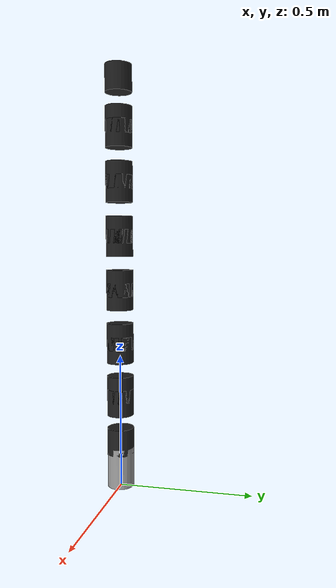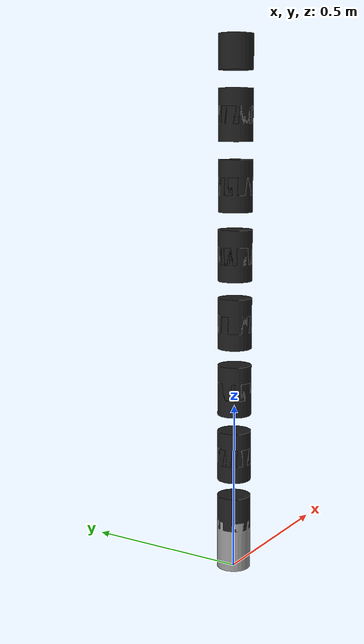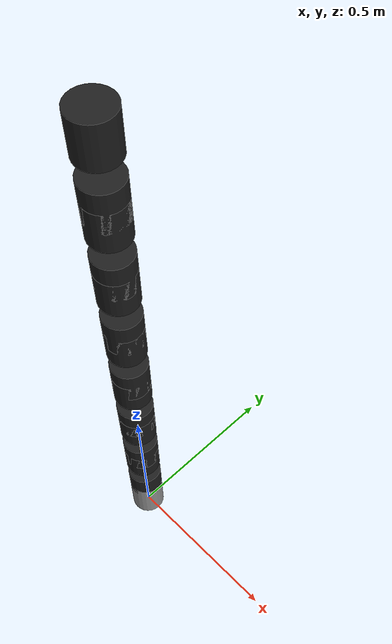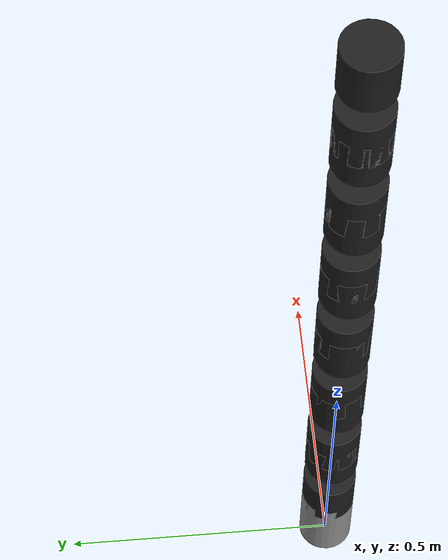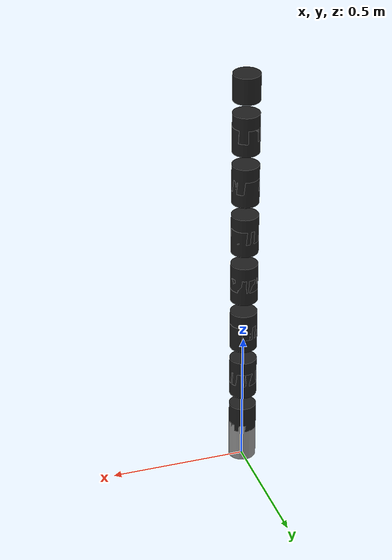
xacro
<?xml version="1.0"?>
<robot xmlns:xacro="http://www.ros.org/wiki/xacro" name="werm">
	<gazebo>
		<plugin name="gazebo_ros_control" filename="libgazebo_ros_control.so">
			<robotNamespace>/werm</robotNamespace>
		</plugin>
	</gazebo>

	<xacro:macro name="body_link" params="base_name parent_name colour">
		<link name="${base_name}_aux">
			<inertial>
				<origin xyz="0 0 0.025" rpy="0 0 0"/>
				<mass value="0.1"/>
				<inertia ixx="0.00025" ixy="0.0" iyy="0.00025" izz="0.000125"/>
			</inertial>
			<collision>
				<origin xyz="0 0 0.025" rpy="0 0 0"/>
				<geometry>
					<cylinder radius="0.05" length="0.10"/>
				</geometry>
			</collision>
			<visual>
				<origin xyz="0 0 0.025" rpy="0 0 0"/>
				<geometry>
					<cylinder radius="0.05" length="0.10"/>
				</geometry>
			</visual>
		</link>

		<gazebo reference="${base_name}_aux">
			<kp>1000000000.0</kp>
			<kd>1000000000.0</kd>
			<mu1>10.0</mu1>
			<mu2>10.0</mu2>
			<material>Gazebo/Black</material>
			<self_collide>1</self_collide>
		</gazebo>

		<link name="${base_name}">
			<inertial>
				<origin xyz="0 0 0.125" rpy="0 0 0"/>
				<mass value="0.1"/>
				<inertia ixx="0.00025" ixy="0.0" iyy="0.00025" izz="0.000125"/>
			</inertial>
			<collision>
				<origin xyz="0 0 0.125" rpy="0 0 0"/>
				<geometry>
					<cylinder radius="0.05" length="0.10"/>
				</geometry>
			</collision>
			<visual>
				<origin xyz="0 0 0.125" rpy="0 0 0"/>
				<geometry>
					<cylinder radius="0.05" length="0.10"/>
				</geometry>
			</visual>
		</link>

		<gazebo reference="${base_name}">
			<kp>1000000000.0</kp>
			<kd>1000000000.0</kd>
			<mu1>10.0</mu1>
			<mu2>10.0</mu2>
			<material>Gazebo/Black</material>
			<self_collide>1</self_collide>
		</gazebo>

        <joint name="${base_name}_aux_joint" type="revolute">
            <parent link="${parent_name}"/>
        	<child link="${base_name}_aux"/>
            <origin xyz="0 0 0.15" rpy="0 0 0"/>
            <limit lower="-1.5708" upper="1.5708" effort="100.0" velocity="0.5"/>
            <axis xyz="1 0 0"/>
    	</joint>

        <joint name="${base_name}_joint" type="revolute">
    	    <parent link="${base_name}_aux"/>
        	<child link="${base_name}"/>
            <origin xyz="0 0 0.05" rpy="0 0 0"/>
            <limit lower="-1.5708" upper="1.5708" effort="100.0" velocity="0.5"/>
            <axis xyz="0 1 0"/>
    	</joint>

	    <transmission name="tran${base_name}_aux">
            <type>transmission_interface/SimpleTransmission</type>
            <joint name="${base_name}_aux_joint">
                <hardwareInterface>EffortJointInterface</hardwareInterface>
            </joint>
            <actuator name="motor${base_name}_aux">
                <hardwareInterface>EffortJointInterface</hardwareInterface>
                <mechanicalReduction>1</mechanicalReduction>
            </actuator>
        </transmission>

        <transmission name="tran${base_name}">
            <type>transmission_interface/SimpleTransmission</type>
            <joint name="${base_name}_joint">
                <hardwareInterface>EffortJointInterface</hardwareInterface>
            </joint>
            <actuator name="motor${base_name}">
                <hardwareInterface>EffortJointInterface</hardwareInterface>
                <mechanicalReduction>1</mechanicalReduction>
            </actuator>
        </transmission>
	</xacro:macro>

    <link name="base_link">
 	    <inertial>
            <origin xyz="0 0 0.075" rpy="0 0 0"/>
            <mass value="0.1" />
            <inertia ixx="0.00025" ixy="0.0" ixz="0.0" iyy="0.00025" iyz="0.0" izz="0.000125"/>
        </inertial>
        <collision>
            <origin xyz="0 0 0.075" rpy="0 0 0"/>
            <geometry>
                <cylinder radius="0.05" length="0.15"/>
            </geometry>
        </collision>
        <visual>
            <origin xyz="0 0 0.075" rpy="0 0 0"/>
            <geometry>
                <cylinder radius="0.05" length="0.15"/>
            </geometry>
        </visual>
	</link>

    <gazebo reference="base_link">
        <kp>100000000000000.0</kp>
        <kd>100000000000000.0</kd>
        <mu1>10.0</mu1>
        <mu2>10.0</mu2>
        <material>Gazebo/Grey</material>
        <self_collide>1</self_collide>
    </gazebo>

    <xacro:body_link base_name="werm_body_1" parent_name="base_link" colour="Grey"/>
	<xacro:body_link base_name="werm_body_2" parent_name="werm_body_1" colour="Grey"/>
    <xacro:body_link base_name="werm_body_3" parent_name="werm_body_2" colour="Grey"/>
    <xacro:body_link base_name="werm_body_4" parent_name="werm_body_3" colour="Grey"/>
    <xacro:body_link base_name="werm_body_5" parent_name="werm_body_4" colour="Grey"/>
    <xacro:body_link base_name="werm_body_6" parent_name="werm_body_5" colour="Grey"/>
    <xacro:body_link base_name="werm_body_7" parent_name="werm_body_6" colour="Grey"/>

</robot>
